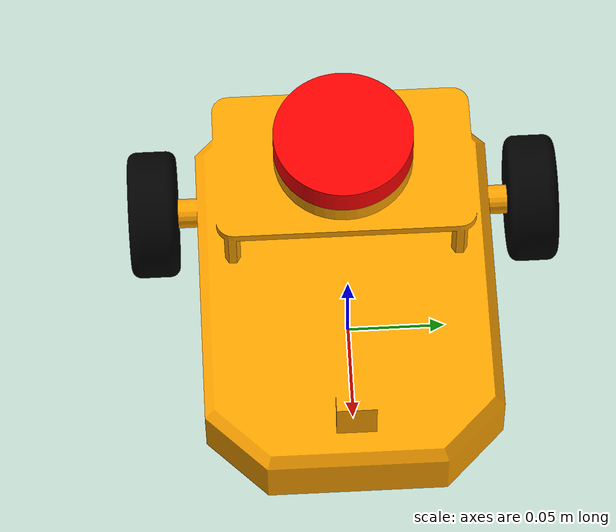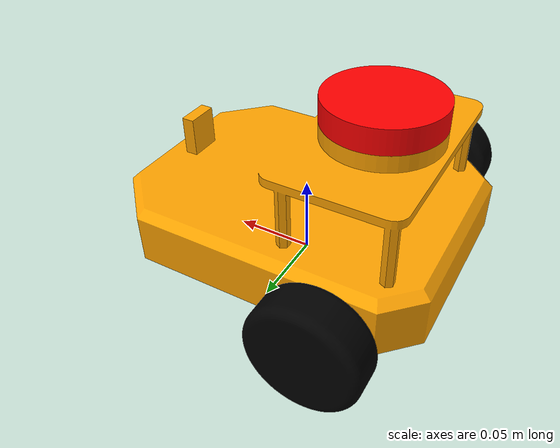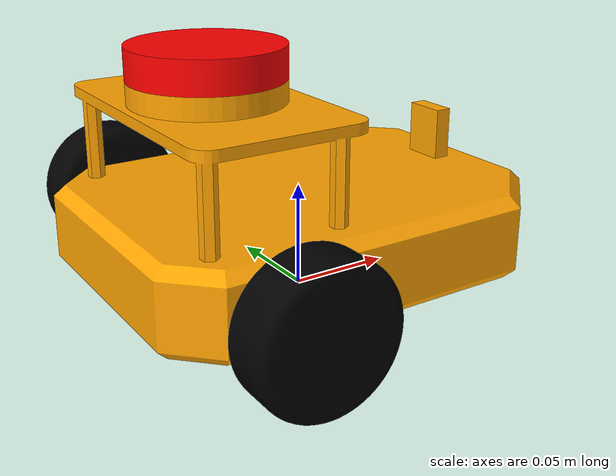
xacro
<?xml version="1.0" ?>
<robot name="bug_robot" xmlns:xacro="http://www.ros.org/wiki/xacro">

<xacro:include filename="$(find bug_robot_description)/urdf/materials.xacro" />
<xacro:include filename="$(find bug_robot_description)/urdf/bug_robot.gazebo" />
<link name="base_link">
  <inertial>
    <origin xyz="-0.004288012785095639 -4.3768436575443764e-17 0.03741152841675314" rpy="0 0 0"/>
    <mass value="1.321588513518243"/>
    <inertia ixx="0.002794" iyy="0.004573" izz="0.006247" ixy="-0.0" iyz="-0.0" ixz="0.000277"/>
  </inertial>
  <visual>
    <origin xyz="0 0 0" rpy="0 0 0"/>
    <geometry>
      <mesh filename="package://bug_robot_description/meshes/base_link.stl" scale="0.001 0.001 0.001"/>
    </geometry>
    <material name="orange"/>
  </visual>
  <collision>
    <origin xyz="0 0 0" rpy="0 0 0"/>
    <geometry>
      <mesh filename="package://bug_robot_description/meshes/base_link.stl" scale="0.001 0.001 0.001"/>
    </geometry>
  </collision>
</link>

<link name="left_wheel_1">
  <inertial>
    <origin xyz="0.0 -0.012499999999999997 0.0" rpy="0 0 0"/>
    <mass value="0.07518292500997302"/>
    <inertia ixx="2.3e-05" iyy="3.9e-05" izz="2.3e-05" ixy="0.0" iyz="-0.0" ixz="0.0"/>
  </inertial>
  <visual>
    <origin xyz="0.055 0.085 -0.0325" rpy="0 0 0"/>
    <geometry>
      <mesh filename="package://bug_robot_description/meshes/left_wheel_1.stl" scale="0.001 0.001 0.001"/>
    </geometry>
    <material name="black"/>
  </visual>
  <collision>
    <origin xyz="0.055 0.085 -0.0325" rpy="0 0 0"/>
    <geometry>
      <mesh filename="package://bug_robot_description/meshes/left_wheel_1.stl" scale="0.001 0.001 0.001"/>
    </geometry>
  </collision>
</link>

<link name="right_wheel_1">
  <inertial>
    <origin xyz="6.938893903907228e-18 0.012499999999999997 0.0" rpy="0 0 0"/>
    <mass value="0.07518292500997299"/>
    <inertia ixx="2.3e-05" iyy="3.9e-05" izz="2.3e-05" ixy="0.0" iyz="0.0" ixz="0.0"/>
  </inertial>
  <visual>
    <origin xyz="0.055 -0.085 -0.0325" rpy="0 0 0"/>
    <geometry>
      <mesh filename="package://bug_robot_description/meshes/right_wheel_1.stl" scale="0.001 0.001 0.001"/>
    </geometry>
    <material name="black"/>
  </visual>
  <collision>
    <origin xyz="0.055 -0.085 -0.0325" rpy="0 0 0"/>
    <geometry>
      <mesh filename="package://bug_robot_description/meshes/right_wheel_1.stl" scale="0.001 0.001 0.001"/>
    </geometry>
  </collision>
</link>

<link name="lidar_1">
  <inertial>
    <origin xyz="-2.2981640954156113e-07 0.0 0.007499999999999979" rpy="0 0 0"/>
    <mass value="0.07966293571340313"/>
    <inertia ixx="2.6e-05" iyy="2.6e-05" izz="4.9e-05" ixy="0.0" iyz="-0.0" ixz="0.0"/>
  </inertial>
  <visual>
    <origin xyz="0.046503 -0.0 -0.1075" rpy="0 0 0"/>
    <geometry>
      <mesh filename="package://bug_robot_description/meshes/lidar_1.stl" scale="0.001 0.001 0.001"/>
    </geometry>
    <material name="red"/>
  </visual>
  <collision>
    <origin xyz="0.046503 -0.0 -0.1075" rpy="0 0 0"/>
    <geometry>
      <mesh filename="package://bug_robot_description/meshes/lidar_1.stl" scale="0.001 0.001 0.001"/>
    </geometry>
  </collision>
</link>

<joint name="left_joint" type="continuous">
  <origin xyz="-0.055 -0.085 0.0325" rpy="0 0 0"/>
  <parent link="base_link"/>
  <child link="left_wheel_1"/>
  <axis xyz="0.0 1.0 0.0"/>
</joint>

<joint name="right_joint" type="continuous">
  <origin xyz="-0.055 0.085 0.0325" rpy="0 0 0"/>
  <parent link="base_link"/>
  <child link="right_wheel_1"/>
  <axis xyz="0.0 1.0 0.0"/>
</joint>

<joint name="lidar_joint" type="fixed">
  <origin xyz="-0.046503 0.0 0.1075" rpy="0 0 0"/>
  <parent link="base_link"/>
  <child link="lidar_1"/>
</joint>

</robot>

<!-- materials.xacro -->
<robot name="bug_robot" xmlns:xacro="http://www.ros.org/wiki/xacro" >

<material name="silver">
  <color rgba="0.700 0.700 0.700 1.000"/>
</material>

<material name="black">
  <color rgba="0.00 0.00 0.00 1.000"/>
</material>

<material name="red">
  <color rgba="1.00 0.00 0.00 1.000"/>
</material>

<material name="orange">
  <color rgba="1.00 0.64 0.00 1.000"/>
</material>

</robot>

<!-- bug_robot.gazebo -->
<robot name="bug_robot" xmlns:xacro="http://www.ros.org/wiki/xacro" >

<xacro:property name="body_color" value="Gazebo/Orange" />
<xacro:property name="wheel_color" value="Gazebo/Black" />
<xacro:property name="lidar_color" value="Gazebo/Blue" />

<gazebo>
  <plugin name="control" filename="libgazebo_ros_control.so"/>
</gazebo>
<gazebo reference="base_link">
  <material>${body_color}</material>
  <mu1>0.2</mu1>
  <mu2>0.2</mu2>
  <selfCollide>true</selfCollide>
  <gravity>true</gravity>
</gazebo>

<gazebo reference="left_wheel_1">
  <material>${wheel_color}</material>
  <mu1>100</mu1>
  <mu2>100</mu2>
  <selfCollide>true</selfCollide>
</gazebo>

<gazebo reference="right_wheel_1">
  <material>${wheel_color}</material>
  <mu1>100</mu1>
  <mu2>100</mu2>
  <selfCollide>true</selfCollide>
</gazebo>

<gazebo reference="lidar_1">
  <material>${lidar_color}</material>
  <mu1>0.2</mu1>
  <mu2>0.2</mu2>
  <selfCollide>true</selfCollide>
</gazebo>

<gazebo>
   <plugin name="differential_drive_controller" filename="libgazebo_ros_diff_drive.so">
    <!-- Plugin update rate in Hz -->
    <updateRate>10</updateRate>
    <!-- Name of left joint, defaults to `left_joint` -->
    <leftJoint>right_joint</leftJoint>
    <!-- Name of right joint, defaults to `right_joint` -->
    <rightJoint>left_joint</rightJoint>
    <!-- The distance from the center of one wheel to the other, in meters, defaults to 0.34 m -->
    <wheelSeparation>0.170</wheelSeparation>
    <!-- Diameter of the wheels, in meters, defaults to 0.15 m -->
    <wheelDiameter>0.065</wheelDiameter>
    <!-- Wheel acceleration, in rad/s^2, defaults to 0.0 rad/s^2 -->
    <wheelAcceleration>1.0</wheelAcceleration>
    <!-- Maximum torque which the wheels can produce, in Nm, defaults to 5 Nm -->
    <wheelTorque>10</wheelTorque>
    <!-- Topic to receive geometry_msgs/Twist message commands, defaults to `cmd_vel` -->
    <commandTopic>cmd_vel</commandTopic>
    <!-- Topic to publish nav_msgs/Odometry messages, defaults to `odom` -->
    <odometryTopic>odom</odometryTopic>
    <!-- Odometry frame, defaults to `odom` -->
    <odometryFrame>odom</odometryFrame>
    <!-- Robot frame to calculate odometry from, defaults to `base_footprint` -->
    <robotBaseFrame>base_link</robotBaseFrame>
    <!-- Odometry source, 0 for ENCODER, 1 for WORLD, defaults to WORLD -->
    <odometrySource>1</odometrySource>
    <!-- Set to true to publish transforms for the wheel links, defaults to false -->
    <publishWheelTF>true</publishWheelTF>
    <!-- Set to true to publish transforms for the odometry, defaults to true -->
    <publishOdom>true</publishOdom>
    <!-- Set to true to publish sensor_msgs/JointState on /joint_states for the wheel joints, defaults to false -->
    <publishWheelJointState>true</publishWheelJointState>
    <!-- Set to true to swap right and left wheels, defaults to true -->
    <legacyMode>false</legacyMode>
  </plugin>
</gazebo>

<gazebo reference="lidar_1">
    <sensor type="ray" name="sen_lidar">
      <pose>0 0 0 0 0 0</pose>
      <visualize>true</visualize>
      <update_rate>10</update_rate>
      <ray>
        <scan>
          <horizontal>
            <samples>720</samples>
            <resolution>1</resolution>
            <min_angle>-1.570796</min_angle>
            <max_angle>1.570796</max_angle>
          </horizontal>
        </scan>
        <range>
          <min>0.10</min>
          <max>10.0</max>
          <resolution>0.01</resolution>
        </range>
        <noise>
          <type>gaussian</type>
          <mean>0.0</mean>
          <stddev>0.01</stddev>
        </noise>
      </ray>
      <plugin name="gazebo_ros_head_hokuyo_controller" filename="libgazebo_ros_laser.so">
        <topicName>/scan</topicName>
        <frameName>lidar_1</frameName>
      </plugin>
    </sensor>
  </gazebo>

</robot>
